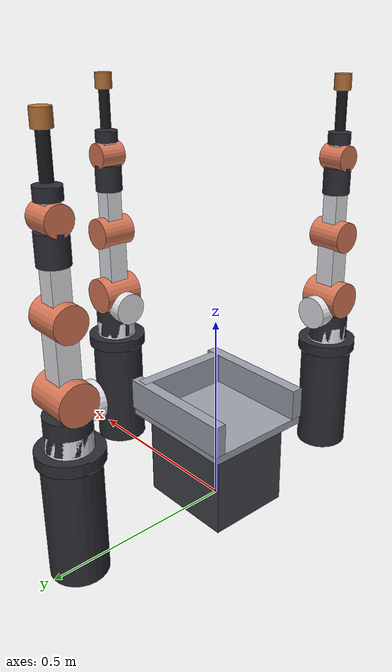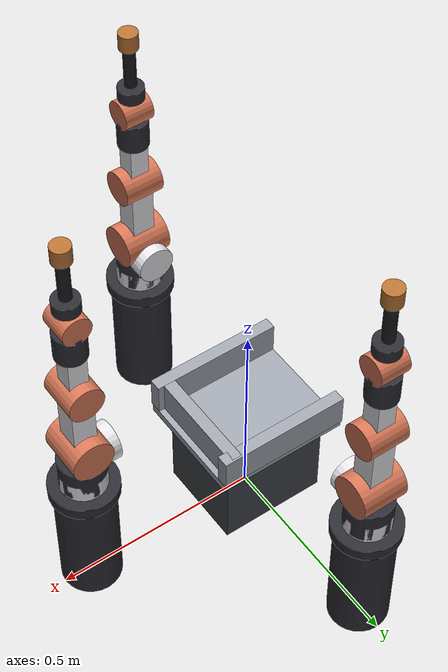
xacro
<?xml version="1.0"?>
<robot name="weld_cell" xmlns:xacro="http://www.ros.org/wiki/xacro">
  <xacro:include filename="$(find weld_cell)/urdf/weld_arm.xacro"/>

  <material name="car_body"><color rgba="0.62 0.64 0.68 1"/></material>
  <material name="fixture"><color rgba="0.25 0.26 0.28 1"/></material>

  <link name="world"/>

  <!-- ===== the car part: an underbody floor pan on a low fixture =====
       Seams sit at z=0.25 so the floor-mounted arms reach them torch-down.
       Rails at y=+/-0.13, cross member at x=0.13. -->
  <link name="car_part">
    <!-- floor pan (top at z=0.25) -->
    <visual><origin xyz="0 0 0.24"/>
      <geometry><box size="0.32 0.28 0.02"/></geometry>
      <material name="car_body"/></visual>
    <!-- left side rail (seam #1) -->
    <visual><origin xyz="0 0.13 0.29"/>
      <geometry><box size="0.32 0.03 0.08"/></geometry>
      <material name="car_body"/></visual>
    <!-- right side rail (seam #2) -->
    <visual><origin xyz="0 -0.13 0.29"/>
      <geometry><box size="0.32 0.03 0.08"/></geometry>
      <material name="car_body"/></visual>
    <!-- cross member (seam #3) -->
    <visual><origin xyz="0.13 0 0.29"/>
      <geometry><box size="0.03 0.28 0.08"/></geometry>
      <material name="car_body"/></visual>
    <!-- fixture -->
    <visual><origin xyz="0 0 0.115"/>
      <geometry><box size="0.26 0.22 0.23"/></geometry>
      <material name="fixture"/></visual>
    <inertial><mass value="20"/>
      <inertia ixx="1" iyy="1" izz="1" ixy="0" ixz="0" iyz="0"/></inertial>
  </link>
  <joint name="world_to_part" type="fixed">
    <parent link="world"/><child link="car_part"/>
  </joint>

  <!-- ===== three welding robots on 0.30 m pedestals, each 0.30 in front
       of its seam, reaching DOWN-forward onto the part ===== -->
  <!-- arm1: welds the left rail (world +y) -->
  <xacro:weld_arm prefix="arm1_" parent="world"
                  x="0.0" y="0.43" z="0.30" yaw="-1.5708" color="wc_accent" ped="0.30"/>
  <!-- arm2: welds the right rail (world -y) -->
  <xacro:weld_arm prefix="arm2_" parent="world"
                  x="0.0" y="-0.43" z="0.30" yaw="1.5708" color="wc_accent" ped="0.30"/>
  <!-- arm3: welds the cross member (world +x) -->
  <xacro:weld_arm prefix="arm3_" parent="world"
                  x="0.43" y="0.0" z="0.30" yaw="3.1416" color="wc_accent" ped="0.30"/>
</robot>

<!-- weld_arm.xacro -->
<robot xmlns:xacro="http://www.ros.org/wiki/xacro">

  <material name="wc_link"><color rgba="0.90 0.90 0.92 1"/></material>
  <material name="wc_joint"><color rgba="0.17 0.17 0.20 1"/></material>
  <material name="wc_accent"><color rgba="0.85 0.47 0.34 1"/></material>
  <material name="wc_torch"><color rgba="0.10 0.10 0.12 1"/></material>
  <material name="wc_copper"><color rgba="0.72 0.45 0.20 1"/></material>

  <!-- a motor housing: cylinder aligned to a joint axis (rpy picks the axis) -->
  <xacro:macro name="wc_motor" params="radius ln rpy:='0 0 0' mat:=wc_joint">
    <visual><origin xyz="0 0 0" rpy="${rpy}"/>
      <geometry><cylinder radius="${radius}" length="${ln}"/></geometry>
      <material name="${mat}"/></visual>
    <collision><origin xyz="0 0 0" rpy="${rpy}"/>
      <geometry><cylinder radius="${radius}" length="${ln}"/></geometry></collision>
  </xacro:macro>

  <!-- a link segment: a box running from the joint (+Z) to the next -->
  <xacro:macro name="wc_seg" params="w ln mat:=wc_link">
    <visual><origin xyz="0 0 ${ln/2}"/>
      <geometry><box size="${w} ${w} ${ln}"/></geometry>
      <material name="${mat}"/></visual>
    <collision><origin xyz="0 0 ${ln/2}"/>
      <geometry><box size="${w} ${w} ${ln}"/></geometry></collision>
  </xacro:macro>

  <xacro:macro name="wc_inertia" params="mass">
    <inertial><mass value="${mass}"/>
      <inertia ixx="0.002" iyy="0.002" izz="0.002" ixy="0" ixz="0" iyz="0"/>
    </inertial>
  </xacro:macro>

  <xacro:macro name="weld_arm" params="prefix parent x y z yaw color:=wc_accent ped:=0.0">
    <xacro:property name="pi2" value="1.5708"/>
    <xacro:property name="waist_h" value="0.08"/>
    <xacro:property name="upper" value="0.18"/>
    <xacro:property name="fore" value="0.15"/>
    <xacro:property name="wrist" value="0.06"/>
    <xacro:property name="jl" value="2.9"/>

    <joint name="${prefix}anchor" type="fixed">
      <parent link="${parent}"/><child link="${prefix}base_link"/>
      <origin xyz="${x} ${y} ${z}" rpy="0 0 ${yaw}"/>
    </joint>

    <!-- ribbed base + riser (+ pedestal down to the floor if ped>0) -->
    <link name="${prefix}base_link">
      <xacro:if value="${ped > 0}">
        <visual><origin xyz="0 0 ${-ped/2}"/>
          <geometry><cylinder radius="0.07" length="${ped}"/></geometry>
          <material name="wc_joint"/></visual>
        <collision><origin xyz="0 0 ${-ped/2}"/>
          <geometry><cylinder radius="0.07" length="${ped}"/></geometry></collision>
      </xacro:if>
      <visual><origin xyz="0 0 0.015"/>
        <geometry><cylinder radius="0.08" length="0.03"/></geometry>
        <material name="wc_joint"/></visual>
      <visual><origin xyz="0 0 0.05"/>
        <geometry><cylinder radius="0.055" length="0.05"/></geometry>
        <material name="wc_link"/></visual>
      <collision><origin xyz="0 0 0.03"/>
        <geometry><cylinder radius="0.08" length="0.06"/></geometry></collision>
      <xacro:wc_inertia mass="1.5"/>
    </link>

    <!-- joint1 waist (Z): waist can + shoulder yoke -->
    <link name="${prefix}link1">
      <xacro:wc_motor radius="0.055" ln="${waist_h}"/>
      <visual><origin xyz="0.03 0 ${waist_h*0.6}" rpy="0 ${pi2} 0"/>
        <geometry><cylinder radius="0.045" length="0.09"/></geometry>
        <material name="wc_link"/></visual>
      <xacro:wc_inertia mass="0.8"/>
    </link>
    <joint name="${prefix}joint1" type="revolute">
      <parent link="${prefix}base_link"/><child link="${prefix}link1"/>
      <origin xyz="0 0 0.075"/><axis xyz="0 0 1"/>
      <limit lower="-${jl}" upper="${jl}" effort="30" velocity="2.0"/>
    </joint>

    <!-- joint2 shoulder (Y): shoulder motor + upper arm -->
    <link name="${prefix}link2">
      <xacro:wc_motor radius="0.05" ln="0.11" rpy="${pi2} 0 0" mat="${color}"/>
      <xacro:wc_seg w="0.055" ln="${upper}"/>
      <xacro:wc_inertia mass="0.8"/>
    </link>
    <joint name="${prefix}joint2" type="revolute">
      <parent link="${prefix}link1"/><child link="${prefix}link2"/>
      <origin xyz="0 0 ${waist_h}"/><axis xyz="0 1 0"/>
      <limit lower="-${jl}" upper="${jl}" effort="30" velocity="2.0"/>
    </joint>

    <!-- joint3 elbow (Y): elbow motor + forearm -->
    <link name="${prefix}link3">
      <xacro:wc_motor radius="0.042" ln="0.095" rpy="${pi2} 0 0" mat="${color}"/>
      <xacro:wc_seg w="0.045" ln="${fore}"/>
      <xacro:wc_inertia mass="0.6"/>
    </link>
    <joint name="${prefix}joint3" type="revolute">
      <parent link="${prefix}link2"/><child link="${prefix}link3"/>
      <origin xyz="0 0 ${upper}"/><axis xyz="0 1 0"/>
      <limit lower="-${jl}" upper="${jl}" effort="20" velocity="2.0"/>
    </joint>

    <!-- joint4 wrist roll (Z) -->
    <link name="${prefix}link4">
      <xacro:wc_motor radius="0.036" ln="0.07"/>
      <xacro:wc_seg w="0.04" ln="${wrist}"/>
      <xacro:wc_inertia mass="0.3"/>
    </link>
    <joint name="${prefix}joint4" type="revolute">
      <parent link="${prefix}link3"/><child link="${prefix}link4"/>
      <origin xyz="0 0 ${fore}"/><axis xyz="0 0 1"/>
      <limit lower="-${jl}" upper="${jl}" effort="10" velocity="2.5"/>
    </joint>

    <!-- joint5 wrist pitch (Y) -->
    <link name="${prefix}link5">
      <xacro:wc_motor radius="0.034" ln="0.07" rpy="${pi2} 0 0" mat="${color}"/>
      <xacro:wc_seg w="0.035" ln="0.05"/>
      <xacro:wc_inertia mass="0.2"/>
    </link>
    <joint name="${prefix}joint5" type="revolute">
      <parent link="${prefix}link4"/><child link="${prefix}link5"/>
      <origin xyz="0 0 ${wrist}"/><axis xyz="0 1 0"/>
      <limit lower="-${jl}" upper="${jl}" effort="10" velocity="2.5"/>
    </joint>

    <!-- joint6 tool roll (Z): flange + welding torch -->
    <link name="${prefix}tool0">
      <xacro:wc_motor radius="0.03" ln="0.03"/>
      <visual><origin xyz="0 0 0.07"/>
        <geometry><cylinder radius="0.014" length="0.10"/></geometry>
        <material name="wc_torch"/></visual>
      <visual><origin xyz="0 0 0.14"/>
        <geometry><cylinder radius="0.022" length="0.04"/></geometry>
        <material name="wc_copper"/></visual>
      <collision><origin xyz="0 0 0.08"/>
        <geometry><cylinder radius="0.03" length="0.18"/></geometry></collision>
      <xacro:wc_inertia mass="0.2"/>
    </link>
    <joint name="${prefix}joint6" type="revolute">
      <parent link="${prefix}link5"/><child link="${prefix}tool0"/>
      <origin xyz="0 0 0.05"/><axis xyz="0 0 1"/>
      <limit lower="-${jl}" upper="${jl}" effort="10" velocity="2.5"/>
    </joint>

    <ros2_control name="${prefix}hw" type="system">
      <hardware><plugin>mock_components/GenericSystem</plugin></hardware>
      <xacro:macro name="ji" params="jn">
        <joint name="${jn}">
          <command_interface name="position"/>
          <state_interface name="position"/>
          <state_interface name="velocity"/>
        </joint>
      </xacro:macro>
      <xacro:ji jn="${prefix}joint1"/><xacro:ji jn="${prefix}joint2"/>
      <xacro:ji jn="${prefix}joint3"/><xacro:ji jn="${prefix}joint4"/>
      <xacro:ji jn="${prefix}joint5"/><xacro:ji jn="${prefix}joint6"/>
    </ros2_control>
  </xacro:macro>
</robot>
